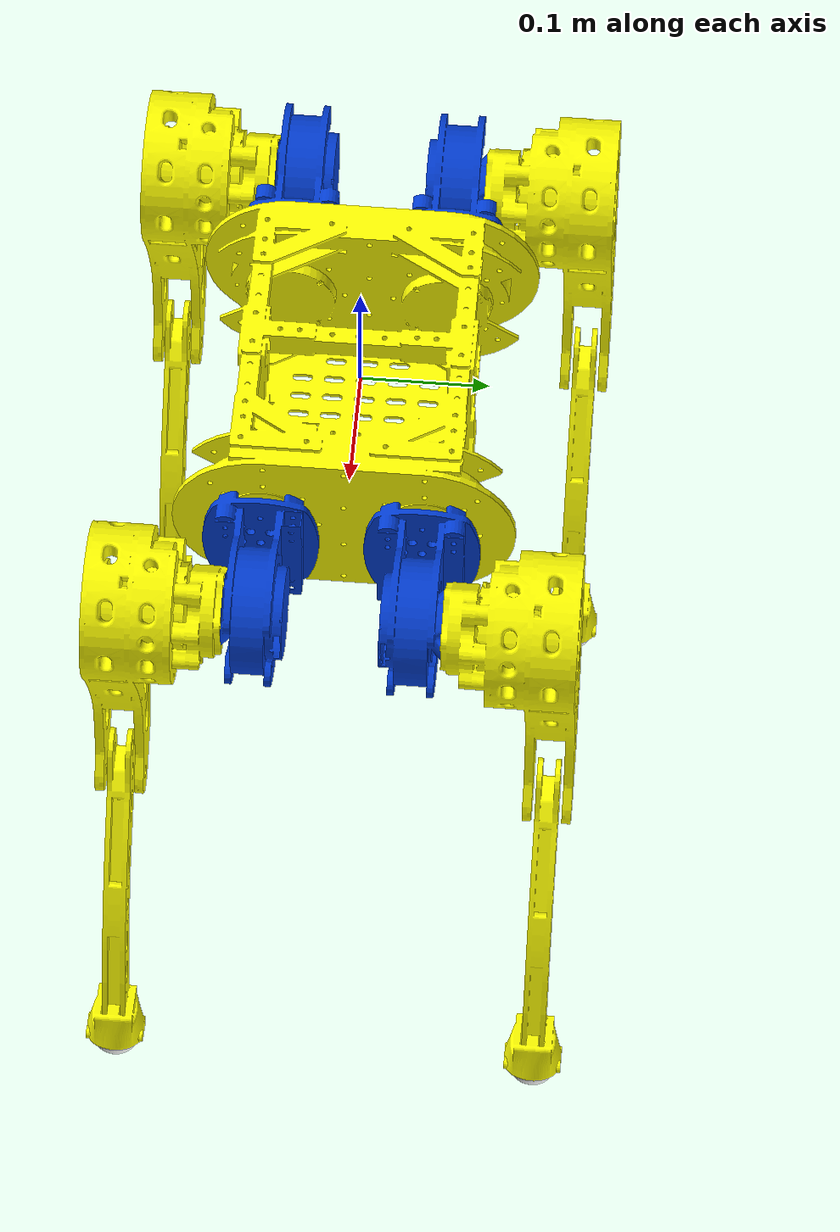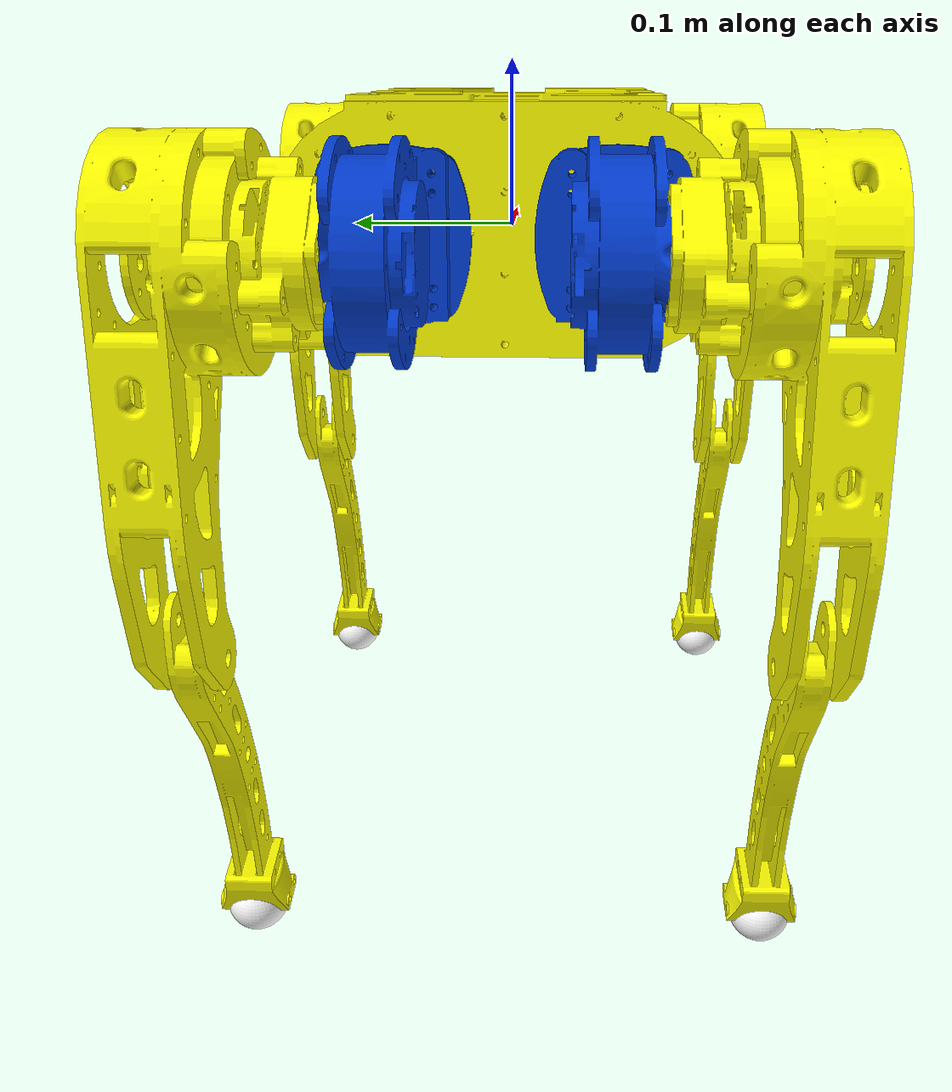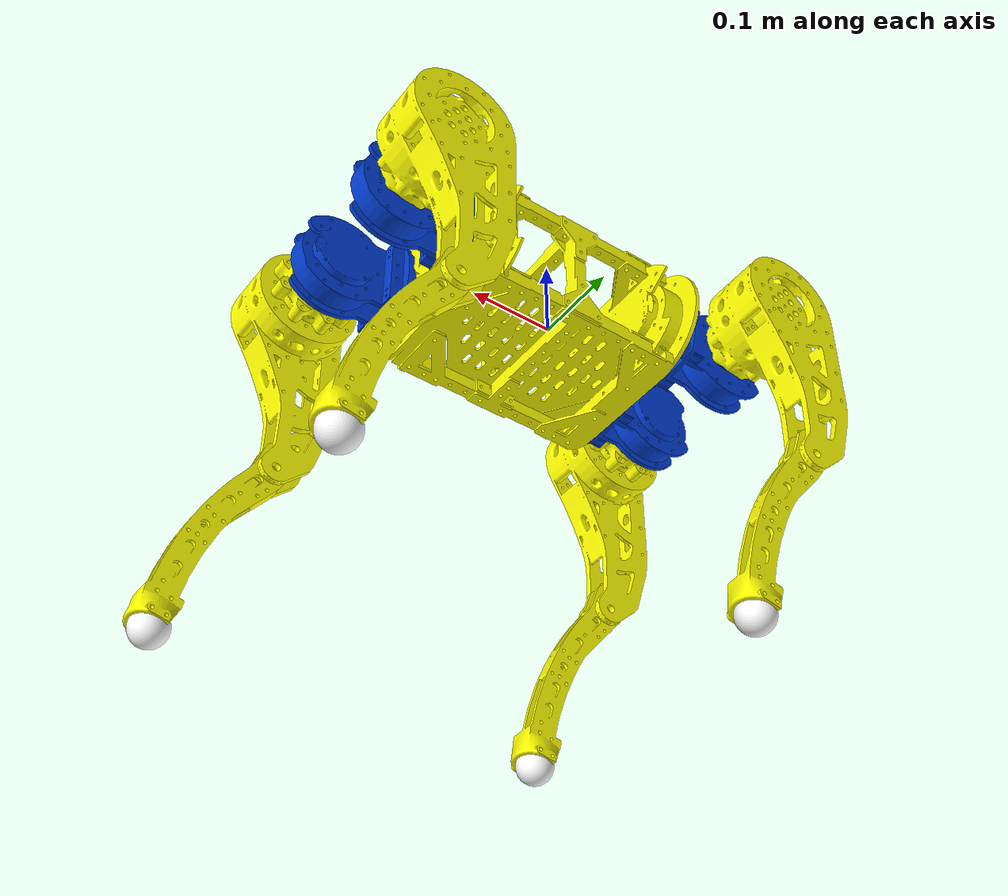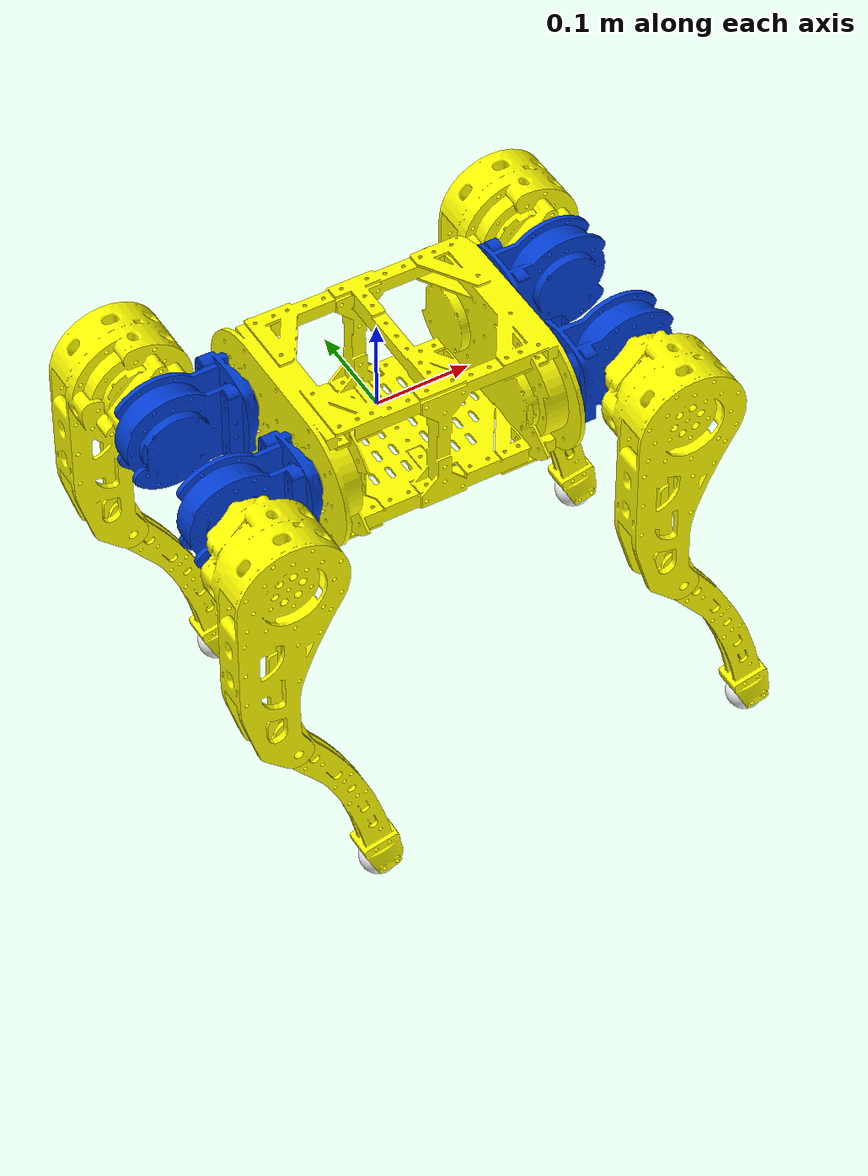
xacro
<?xml version="1.0" encoding="utf-8"?>
<robot
  name="g308_km" xmlns:xacro="http://www.ros.org/wiki/xacro">
  <link
    name="base">
    <inertial>
      <origin
        xyz="0.021402 -0.000011 0.005632"
        rpy="0 0 0" />
      <mass
        value="4.135266" />
      <inertia
        ixx="0.022287"
        ixy="0.0"
        ixz="0.0"
        iyy="0.052865"
        iyz="-0.000002"
        izz="0.063659" />
    </inertial>
    <visual>
      <origin
        xyz="0 0 0"
        rpy="0 0 0" />
      <geometry>
        <mesh
          filename="package://g308_km2/meshes/base_link.STL" />
      </geometry>
      <material
        name="">
        <color
          rgba="1 1 0 1" />
      </material>
    </visual>
    <collision>
      <origin
        xyz="0 0 0"
        rpy="0 0 0" />
      <geometry>
        <mesh
          filename="package://g308_km2/meshes/base_link.STL" />
      </geometry>
    </collision>
  </link>
  <link
    name="FL_hip">
    <inertial>
      <origin
        xyz="0.044862 0.000111 0.000121"
        rpy="0 0 0" />
      <mass
        value="1.000402" />
      <inertia
        ixx="0.000641"
        ixy="-0.000002"
        ixz="0.000002"
        iyy="0.001658"
        iyz="0.0"
        izz="0.001399" />
    </inertial>
    <visual>
      <origin
        xyz="0 0 0"
        rpy="0 0 0" />
      <geometry>
        <mesh
          filename="package://g308_km2/meshes/FL_hip.STL" />
      </geometry>
      <material
        name="">
        <color
          rgba="0.00784313725490196 0.23921568627451 0.823529411764706 1" />
      </material>
    </visual>
    <collision>
      <origin
        xyz="0 0 0"
        rpy="0 0 0" />
      <geometry>
        <mesh
          filename="package://g308_km2/meshes/FL_hip.STL" />
      </geometry>
    </collision>
  </link>
  <joint
    name="FL_hip_joint"
    type="revolute">
    <origin
      xyz="0.169896957635188 0.0614999999999988 0.00773563134770043"
      rpy="0 0 0" />
    <parent
      link="base" />
    <child
      link="FL_hip" />
    <axis
      xyz="1 0 0" />
    <limit
      lower="-0.25"
      upper="0.25"
      effort="20"
      velocity="10" />
  </joint>
  <link
    name="FL_thigh">
    <inertial>
      <origin
        xyz="-0.002626 0.041377 -0.026580"
        rpy="0 0 0" />
      <mass
        value="1.657182" />
      <inertia
        ixx="0.007409"
        ixy="0.000182"
        ixz="-0.000733"
        iyy="0.007405"
        iyz="0.001031"
        izz="0.002280" />
    </inertial>
    <visual>
      <origin
        xyz="0 0 0"
        rpy="0 0 0" />
      <geometry>
        <mesh
          filename="package://g308_km2/meshes/FL_thigh.STL" />
      </geometry>
      <material
        name="">
        <color
          rgba="1 1 0 1" />
      </material>
    </visual>
    <collision>
      <origin
        xyz="0 0 0"
        rpy="0 0 0" />
      <geometry>
        <mesh
          filename="package://g308_km2/meshes/FL_thigh.STL" />
      </geometry>
    </collision>
  </link>
  <joint
    name="FL_thigh_joint"
    type="revolute">
    <origin
      xyz="0.0677000000000165 0.0389999999999984 0"
      rpy="0 0 0" />
    <parent
      link="FL_hip" />
    <child
      link="FL_thigh" />
    <axis
      xyz="0 1 0" />
    <limit
      lower="-1.5"
      upper="1.5"
      effort="20"
      velocity="10" />
  </joint>
  <link
    name="FL_calf">
    <inertial>
      <origin
        xyz="0.0502864361062866 -0.0100012628542901 -0.0913683307386556"
        rpy="0 0 0" />
      <mass
        value="0.24357427073011" />
      <inertia
        ixx="0.001367"
        ixy="0.0"
        ixz="0.000642"
        iyy="0.001698"
        iyz="0.0"
        izz="0.000356" />
    </inertial>
    <visual>
      <origin
        xyz="0 0 0"
        rpy="0 0 0" />
      <geometry>
        <mesh
          filename="package://g308_km2/meshes/FL_calf.STL" />
      </geometry>
      <material
        name="">
        <color
          rgba="1 1 0 1" />
      </material>
    </visual>
    <collision>
      <origin
        xyz="0 0 0"
        rpy="0 0 0" />
      <geometry>
        <mesh
          filename="package://g308_km2/meshes/FL_calf.STL" />
      </geometry>
    </collision>
  </link>
  <joint
    name="FL_calf_joint"
    type="revolute">
    <origin
      xyz="0 0.0765000024826573 -0.22000000617793"
      rpy="0 0 0" />
    <parent
      link="FL_thigh" />
    <child
      link="FL_calf" />
    <axis
      xyz="0 1 0" />
    <limit
      lower="-2.3"
      upper="0"
      effort="20"
      velocity="10" />
  </joint>
  <link
    name="FL_foot">
    <inertial>
      <origin
        xyz="-0.000006 0.0 -9.21846519300606E-05"
        rpy="0 0 0" />
      <mass
        value="0.0311902243903798" />
      <inertia
        ixx="5.01347937484814E-06"
        ixy="-8.23952528788361E-13"
        ixz="-1.58989737485414E-08"
        iyy="5.06120841117782E-06"
        iyz="-1.84888830000075E-13"
        izz="4.99040323981824E-06" />
    </inertial>
    <visual>
      <origin
        xyz="0 0 0"
        rpy="0 0 0" />
      <geometry>
        <mesh
          filename="package://g308_km2/meshes/FL_foot.STL" />
      </geometry>
      <material
        name="">
        <color
          rgba="1 1 1 1" />
      </material>
    </visual>
    <collision>
      <origin
        xyz="0 0 0"
        rpy="0 0 0" />
      <geometry>
        <mesh
          filename="package://g308_km2/meshes/FL_foot.STL" />
      </geometry>
    </collision>
  </link>
  <joint
    name="FL_foot_joint"
    type="fixed">
    <origin
      xyz="0.0961788196628297 -0.00999999474772562 -0.224142335649936"
      rpy="0 0 0" />
    <parent
      link="FL_calf" />
    <child
      link="FL_foot" />
    <axis
      xyz="0 0 0" />
    <limit
      effort="20"
      velocity="10" />
  </joint>
  <link
    name="RL_hip">
    <inertial>
      <origin
        xyz="-0.044862 0.000111 0.000055"
        rpy="0 0 0" />
      <mass
        value="1.000402" />
      <inertia
        ixx="0.000641"
        ixy="0.000001"
        ixz="-0.000004"
        iyy="0.001658"
        iyz="0.0"
        izz="0.001399" />
    </inertial>
    <visual>
      <origin
        xyz="0 0 0"
        rpy="0 0 0" />
      <geometry>
        <mesh
          filename="package://g308_km2/meshes/RL_hip.STL" />
      </geometry>
      <material
        name="">
        <color
          rgba="0.00784313725490196 0.23921568627451 0.823529411764706 1" />
      </material>
    </visual>
    <collision>
      <origin
        xyz="0 0 0"
        rpy="0 0 0" />
      <geometry>
        <mesh
          filename="package://g308_km2/meshes/RL_hip.STL" />
      </geometry>
    </collision>
  </link>
  <joint
    name="RL_hip_joint"
    type="revolute">
    <origin
      xyz="-0.127094802324013 0.0615000000000004 0.00773563134769126"
      rpy="0 0 0" />
    <parent
      link="base" />
    <child
      link="RL_hip" />
    <axis
      xyz="1 0 0" />
    <limit
      lower="-0.25"
      upper="0.25"
      effort="20"
      velocity="10" />
  </joint>
  <link
    name="RL_thigh">
    <inertial>
      <origin
        xyz="-0.014268 0.021377 -0.014939"
        rpy="0 0 0" />
      <mass
        value="1.657182" />
      <inertia
        ixx="0.007409"
        ixy="0.000182"
        ixz="-0.000733"
        iyy="0.007405"
        iyz="0.001031"
        izz="0.002280" />
    </inertial>
    <visual>
      <origin
        xyz="0 0 0"
        rpy="0 0 0" />
      <geometry>
        <mesh
          filename="package://g308_km2/meshes/RL_thigh.STL" />
      </geometry>
      <material
        name="">
        <color
          rgba="1 1 0 1" />
      </material>
    </visual>
    <collision>
      <origin
        xyz="0 0 0"
        rpy="0 0 0" />
      <geometry>
        <mesh
          filename="package://g308_km2/meshes/RL_thigh.STL" />
      </geometry>
    </collision>
  </link>
  <joint
    name="RL_thigh_joint"
    type="revolute">
    <origin
      xyz="-0.0560585780326773 0.0590000000000006 -0.0116414219673209"
      rpy="0 0 0" />
    <parent
      link="RL_hip" />
    <child
      link="RL_thigh" />
    <axis
      xyz="0 1 0" />
    <limit
      lower="-1.5"
      upper="1.5"
      effort="20"
      velocity="10" />
  </joint>
  <link
    name="RL_calf">
    <inertial>
      <origin
        xyz="0.0502864229249339 -0.0100012603719431 -0.0913683369164015"
        rpy="0 0 0" />
      <mass
        value="0.243574270730111" />
      <inertia
        ixx="0.001367"
        ixy="0.0"
        ixz="-0.000642"
        iyy="0.001698"
        iyz="0.0"
        izz="0.000356" />
    </inertial>
    <visual>
      <origin
        xyz="0 0 0"
        rpy="0 0 0" />
      <geometry>
        <mesh
          filename="package://g308_km2/meshes/RL_calf.STL" />
      </geometry>
      <material
        name="">
        <color
          rgba="1 1 0 1" />
      </material>
    </visual>
    <collision>
      <origin
        xyz="0 0 0"
        rpy="0 0 0" />
      <geometry>
        <mesh
          filename="package://g308_km2/meshes/RL_calf.STL" />
      </geometry>
    </collision>
  </link>
  <joint
    name="RL_calf_joint"
    type="revolute">
    <origin
      xyz="-0.0116414219673151 0.0565000000000057 -0.208358578032676"
      rpy="0 0 0" />
    <parent
      link="RL_thigh" />
    <child
      link="RL_calf" />
    <axis
      xyz="0 1 0" />
    <limit
      lower="-2.3"
      upper="0"
      effort="20"
      velocity="10" />
  </joint>
  <link
    name="RL_foot">
    <inertial>
      <origin
        xyz="-5.85322688909096E-06 2.61542565382911E-10 -9.2190868305364E-05"
        rpy="0 0 0" />
      <mass
        value="0.0311902243903798" />
      <inertia
        ixx="5.01347937484815E-06"
        ixy="-8.23952529291106E-13"
        ixz="-1.58989737485399E-08"
        iyy="5.06120841117782E-06"
        iyz="-1.8488882759212E-13"
        izz="4.99040323981824E-06" />
    </inertial>
    <visual>
      <origin
        xyz="0 0 0"
        rpy="0 0 0" />
      <geometry>
        <mesh
          filename="package://g308_km2/meshes/RL_foot.STL" />
      </geometry>
      <material
        name="">
        <color
          rgba="1 1 1 1" />
      </material>
    </visual>
    <collision>
      <origin
        xyz="0 0 0"
        rpy="0 0 0" />
      <geometry>
        <mesh
          filename="package://g308_km2/meshes/RL_foot.STL" />
      </geometry>
    </collision>
  </link>
  <joint
    name="RL_foot_joint"
    type="fixed">
    <origin
      xyz="0.0961788196898257 -0.00999999468162976 -0.224142335611317"
      rpy="0 0 0" />
    <parent
      link="RL_calf" />
    <child
      link="RL_foot" />
    <axis
      xyz="0 0 0" />
  </joint>
  <link
    name="FR_hip">
    <inertial>
      <origin
        xyz="0.044862 -0.000111 0.000055"
        rpy="0 0 0" />
      <mass
        value="1.000402" />
      <inertia
        ixx="0.000641"
        ixy="0.000001"
        ixz="0.000004"
        iyy="0.001658"
        iyz="0.0"
        izz="0.001399" />
    </inertial>
    <visual>
      <origin
        xyz="0 0 0"
        rpy="0 0 0" />
      <geometry>
        <mesh
          filename="package://g308_km2/meshes/FR_hip.STL" />
      </geometry>
      <material
        name="">
        <color
          rgba="0.00784313725490196 0.23921568627451 0.823529411764706 1" />
      </material>
    </visual>
    <collision>
      <origin
        xyz="0 0 0"
        rpy="0 0 0" />
      <geometry>
        <mesh
          filename="package://g308_km2/meshes/FR_hip.STL" />
      </geometry>
    </collision>
  </link>
  <joint
    name="FR_hip_joint"
    type="revolute">
    <origin
      xyz="0.169896957585034 -0.0615000000501541 0.00773564344453465"
      rpy="0 0 0" />
    <parent
      link="base" />
    <child
      link="FR_hip" />
    <axis
      xyz="1 0 0" />
    <limit
      lower="-0.25"
      upper="0.25"
      effort="20"
      velocity="10" />
  </joint>
  <link
    name="FR_thigh">
    <inertial>
      <origin
        xyz="-0.014239 0.021377 -0.014910"
        rpy="0 0 0" />
      <mass
        value="1.657182" />
      <inertia
        ixx="0.007412"
        ixy="-0.000183"
        ixz="-0.000734"
        iyy="0.007408"
        iyz="-0.001032"
        izz="0.002281" />
    </inertial>
    <visual>
      <origin
        xyz="0 0 0"
        rpy="0 0 0" />
      <geometry>
        <mesh
          filename="package://g308_km2/meshes/FR_thigh.STL" />
      </geometry>
      <material
        name="">
        <color
          rgba="1 1 0 1" />
      </material>
    </visual>
    <collision>
      <origin
        xyz="0 0 0"
        rpy="0 0 0" />
      <geometry>
        <mesh
          filename="package://g308_km2/meshes/FR_thigh.STL" />
      </geometry>
    </collision>
  </link>
  <joint
    name="FR_thigh_joint"
    type="revolute">
    <origin
      xyz="0.0793414219628311 -0.0590000000044883 -0.0116414499397221"
      rpy="0 0 0" />
    <parent
      link="FR_hip" />
    <child
      link="FR_thigh" />
    <axis
      xyz="0 1 0" />
    <limit
      lower="-1.5"
      upper="1.5"
      effort="20"
      velocity="10" />
  </joint>
  <link
    name="FR_calf">
    <inertial>
      <origin
        xyz="0.0502864229249339 -0.0100012603719431 -0.0913683369164015"
        rpy="0 0 0" />
      <mass
        value="0.243574270730111" />
      <inertia
        ixx="0.001367"
        ixy="0.0"
        ixz="0.000642"
        iyy="0.001698"
        iyz="0.0"
        izz="0.000356" />
    </inertial>
    <visual>
      <origin
        xyz="0 0 0"
        rpy="0 0 0" />
      <geometry>
        <mesh
          filename="package://g308_km2/meshes/FR_calf.STL" />
      </geometry>
      <material
        name="">
        <color
          rgba="1 1 0 1" />
      </material>
    </visual>
    <collision>
      <origin
        xyz="0 0 0"
        rpy="0 0 0" />
      <geometry>
        <mesh
          filename="package://g308_km2/meshes/FR_calf.STL" />
      </geometry>
    </collision>
  </link>
  <joint
    name="FR_calf_joint"
    type="revolute">
    <origin
      xyz="-0.0116414038818166 -0.0365000120545385 -0.208358576391672"
      rpy="0 0 0" />
    <parent
      link="FR_thigh" />
    <child
      link="FR_calf" />
    <axis
      xyz="0 1 0" />
    <limit
      lower="-2.3"
      upper="0"
      effort="20"
      velocity="10" />
  </joint>
  <link
    name="FR_foot">
    <inertial>
      <origin
        xyz="-5.85322568097402E-06 2.64939459260205E-10 -9.21908797132942E-05"
        rpy="0 0 0" />
      <mass
        value="0.0311902243903797" />
      <inertia
        ixx="5.01347937484811E-06"
        ixy="-8.23952528235531E-13"
        ixz="-1.58989737485516E-08"
        iyy="5.06120841117781E-06"
        iyz="-1.84888823216108E-13"
        izz="4.99040323981825E-06" />
    </inertial>
    <visual>
      <origin
        xyz="0 0 0"
        rpy="0 0 0" />
      <geometry>
        <mesh
          filename="package://g308_km2/meshes/FR_foot.STL" />
      </geometry>
      <material
        name="">
        <color
          rgba="1 1 1 1" />
      </material>
    </visual>
    <collision>
      <origin
        xyz="0 0 0"
        rpy="0 0 0" />
      <geometry>
        <mesh
          filename="package://g308_km2/meshes/FR_foot.STL" />
      </geometry>
    </collision>
  </link>
  <joint
    name="FR_foot_joint"
    type="fixed" dont_collapse="true">
    <origin
      xyz="0.096178801658822 -0.00999998257200752 -0.224142321376693"
      rpy="0 0 0" />
    <parent
      link="FR_calf" />
    <child
      link="FR_foot" />
    <axis
      xyz="0 0 0" />
  </joint>
  <link
    name="RR_hip">
    <inertial>
      <origin
        xyz="-0.044862 -0.000111 0.000121"
        rpy="0 0 0" />
      <mass
        value="1.000402" />
      <inertia
        ixx="0.000641"
        ixy="-0.000002"
        ixz="-0.000002"
        iyy="0.001658"
        iyz="0.0"
        izz="0.001399" />
    </inertial>
    <visual>
      <origin
        xyz="0 0 0"
        rpy="0 0 0" />
      <geometry>
        <mesh
          filename="package://g308_km2/meshes/RR_hip.STL" />
      </geometry>
      <material
        name="">
        <color
          rgba="0.00784313725490196 0.23921568627451 0.823529411764706 1" />
      </material>
    </visual>
    <collision>
      <origin
        xyz="0 0 0"
        rpy="0 0 0" />
      <geometry>
        <mesh
          filename="package://g308_km2/meshes/RR_hip.STL" />
      </geometry>
    </collision>
  </link>
  <joint
    name="RR_hip_joint"
    type="revolute">
    <origin
      xyz="-0.127094802324014 -0.0614999999999988 0.00773563134771131"
      rpy="0 0 0" />
    <parent
      link="base" />
    <child
      link="RR_hip" />
    <axis
      xyz="1 0 0" />
    <limit
      lower="-0.25"
      upper="0.25"
      effort="20"
      velocity="10" />
  </joint>
  <link
    name="RR_thigh">
    <inertial>
      <origin
        xyz="-0.014239 -0.021377 -0.014910"
        rpy="0 0 0" />
      <mass
        value="1.657182" />
      <inertia
        ixx="0.007412"
        ixy="-0.000183"
        ixz="-0.000734"
        iyy="0.007408"
        iyz="-0.001032"
        izz="0.002281" />
    </inertial>
    <visual>
      <origin
        xyz="0 0 0"
        rpy="0 0 0" />
      <geometry>
        <mesh
          filename="package://g308_km2/meshes/RR_thigh.STL" />
      </geometry>
      <material
        name="">
        <color
          rgba="1 1 0 1" />
      </material>
    </visual>
    <collision>
      <origin
        xyz="0 0 0"
        rpy="0 0 0" />
      <geometry>
        <mesh
          filename="package://g308_km2/meshes/RR_thigh.STL" />
      </geometry>
    </collision>
  </link>
  <joint
    name="RR_thigh_joint"
    type="revolute">
    <origin
      xyz="-0.0560585780326786 -0.0589999999999984 -0.0116414219673416"
      rpy="0 0 0" />
    <parent
      link="RR_hip" />
    <child
      link="RR_thigh" />
    <axis
      xyz="0 1 0" />
    <limit
      lower="-1.5"
      upper="1.5"
      effort="20"
      velocity="10" />
  </joint>
  <link
    name="RR_calf">
    <inertial>
      <origin
        xyz="0.0502864229249339 -0.0100012603719431 -0.0913683369164015"
        rpy="0 0 0" />
      <mass
        value="0.243574270730111" />
      <inertia
        ixx="0.001367"
        ixy="0.0"
        ixz="0.000642"
        iyy="0.001698"
        iyz="0.0"
        izz="0.000356" />
    </inertial>
    <visual>
      <origin
        xyz="0 0 0"
        rpy="0 0 0" />
      <geometry>
        <mesh
          filename="package://g308_km2/meshes/RR_calf.STL" />
      </geometry>
      <material
        name="">
        <color
          rgba="1 1 0 1" />
      </material>
    </visual>
    <collision>
      <origin
        xyz="0 0 0"
        rpy="0 0 0" />
      <geometry>
        <mesh
          filename="package://g308_km2/meshes/RR_calf.STL" />
      </geometry>
    </collision>
  </link>
  <joint
    name="RR_calf_joint"
    type="revolute">
    <origin
      xyz="-0.0116414073695187 -0.0365000163770425 -0.208358573653802"
      rpy="0 0 0" />
    <parent
      link="RR_thigh" />
    <child
      link="RR_calf" />
    <axis
      xyz="0 1 0" />
    <limit
      lower="-2.3"
      upper="0"
      effort="20"
      velocity="10" />
  </joint>
  <link
    name="RR_foot">
    <inertial>
      <origin
        xyz="-5.85322945402533E-06 2.69323785495601E-10 -9.21908810186389E-05"
        rpy="0 0 0" />
      <mass
        value="0.0311902243903798" />
      <inertia
        ixx="5.01347937484812E-06"
        ixy="-8.2395252888934E-13"
        ixz="-1.58989737485532E-08"
        iyy="5.06120841117781E-06"
        iyz="-1.84888826512745E-13"
        izz="4.99040323981825E-06" />
    </inertial>
    <visual>
      <origin
        xyz="0 0 0"
        rpy="0 0 0" />
      <geometry>
        <mesh
          filename="package://g308_km2/meshes/RR_foot.STL" />
      </geometry>
      <material
        name="">
        <color
          rgba="1 1 1 1" />
      </material>
    </visual>
    <collision>
      <origin
        xyz="0 0 0"
        rpy="0 0 0" />
      <geometry>
        <mesh
          filename="package://g308_km2/meshes/RR_foot.STL" />
      </geometry>
    </collision>
  </link>
  <joint
    name="RR_foot_joint"
    type="fixed">
    <origin
      xyz="0.0961788050922009 -0.0099999783045851 -0.224142339990188"
      rpy="0 0 0" />
    <parent
      link="RR_calf" />
    <child
      link="RR_foot" />
    <axis
      xyz="0 0 0" />
  </joint>
    <transmission name="t11">
    <type>transmission_interface/SimpleTransmission</type>
    <joint name="FL_hip_joint">
      <hardwareInterface>hardware_interface/EffortJointInterface</hardwareInterface>
    </joint>
    <actuator name="a11">
      <mechanicalReduction>1.0</mechanicalReduction>
      <hardwareInterface>hardware_interface/EffortJointInterface</hardwareInterface>
    </actuator>
  </transmission>
   <transmission name="t12">
    <type>transmission_interface/SimpleTransmission</type>
    <joint name="FL_thigh_joint">
      <hardwareInterface>hardware_interface/EffortJointInterface</hardwareInterface>
    </joint>
    <actuator name="a12">
      <mechanicalReduction>1.0</mechanicalReduction>
      <hardwareInterface>hardware_interface/EffortJointInterface</hardwareInterface>
    </actuator>
  </transmission>
   <transmission name="t13">
    <type>transmission_interface/SimpleTransmission</type>
    <joint name="FL_calf_joint">
      <hardwareInterface>hardware_interface/EffortJointInterface</hardwareInterface>
    </joint>
    <actuator name="a13">
      <mechanicalReduction>1.0</mechanicalReduction>
      <hardwareInterface>hardware_interface/EffortJointInterface</hardwareInterface>
    </actuator>
  </transmission>
  <transmission name="t21">
    <type>transmission_interface/SimpleTransmission</type>
    <joint name="RL_hip_joint">
      <hardwareInterface>hardware_interface/EffortJointInterface</hardwareInterface>
    </joint>
    <actuator name="a21">
      <mechanicalReduction>1.0</mechanicalReduction>
      <hardwareInterface>hardware_interface/EffortJointInterface</hardwareInterface>
    </actuator>
  </transmission>
   <transmission name="t22">
    <type>transmission_interface/SimpleTransmission</type>
    <joint name="RL_thigh_joint">
      <hardwareInterface>hardware_interface/EffortJointInterface</hardwareInterface>
    </joint>
    <actuator name="a21">
      <mechanicalReduction>1.0</mechanicalReduction>
      <hardwareInterface>hardware_interface/EffortJointInterface</hardwareInterface>
    </actuator>
  </transmission>
   <transmission name="t23">
    <type>transmission_interface/SimpleTransmission</type>
    <joint name="RL_calf_joint">
      <hardwareInterface>hardware_interface/EffortJointInterface</hardwareInterface>
    </joint>
    <actuator name="a23">
      <mechanicalReduction>1.0</mechanicalReduction>
      <hardwareInterface>hardware_interface/EffortJointInterface</hardwareInterface>
    </actuator>
  </transmission>
   <transmission name="t31">
    <type>transmission_interface/SimpleTransmission</type>
    <joint name="FR_hip_joint">
      <hardwareInterface>hardware_interface/EffortJointInterface</hardwareInterface>
    </joint>
    <actuator name="a31">
      <mechanicalReduction>1.0</mechanicalReduction>
      <hardwareInterface>hardware_interface/EffortJointInterface</hardwareInterface>
    </actuator>
  </transmission>
   <transmission name="t32">
    <type>transmission_interface/SimpleTransmission</type>
    <joint name="FR_thigh_joint">
      <hardwareInterface>hardware_interface/EffortJointInterface</hardwareInterface>
    </joint>
    <actuator name="a32">
      <mechanicalReduction>1.0</mechanicalReduction>
      <hardwareInterface>hardware_interface/EffortJointInterface</hardwareInterface>
    </actuator>
  </transmission>
   <transmission name="t32">
    <type>transmission_interface/SimpleTransmission</type>
    <joint name="FR_calf_joint">
      <hardwareInterface>hardware_interface/EffortJointInterface</hardwareInterface>
    </joint>
    <actuator name="a32">
      <mechanicalReduction>1.0</mechanicalReduction>
      <hardwareInterface>hardware_interface/EffortJointInterface</hardwareInterface>
    </actuator>
  </transmission>
   <transmission name="t41">
    <type>transmission_interface/SimpleTransmission</type>
    <joint name="RR_hip_joint">
      <hardwareInterface>hardware_interface/EffortJointInterface</hardwareInterface>
    </joint>
    <actuator name="a41">
      <mechanicalReduction>1.0</mechanicalReduction>
      <hardwareInterface>hardware_interface/EffortJointInterface</hardwareInterface>
    </actuator>
  </transmission>
   <transmission name="t42">
    <type>transmission_interface/SimpleTransmission</type>
    <joint name="RR_thigh_joint">
      <hardwareInterface>hardware_interface/EffortJointInterface</hardwareInterface>
    </joint>
    <actuator name="a42">
      <mechanicalReduction>1.0</mechanicalReduction>
      <hardwareInterface>hardware_interface/EffortJointInterface</hardwareInterface>
    </actuator>
  </transmission>
   <transmission name="t43">
    <type>transmission_interface/SimpleTransmission</type>
    <joint name="RR_calf_joint">
      <hardwareInterface>hardware_interface/EffortJointInterface</hardwareInterface>
    </joint>
    <actuator name="a43">
      <mechanicalReduction>1.0</mechanicalReduction>
      <hardwareInterface>hardware_interface/EffortJointInterface</hardwareInterface>
    </actuator>
  </transmission>
  <gazebo>
    <plugin name="gazebo_ros_control" filename="libgazebo_ros_control.so">
      <robotNamespace>/horse</robotNamespace>
      <robotSimType>gazebo_ros_control/DefaultRobotHWSim</robotSimType>
      <legacyModeNS>true</legacyModeNS>
    </plugin>
  </gazebo>

  <gazebo reference="base">
      <turnGravityOff>false</turnGravityOff>
  </gazebo>

  <gazebo reference="imu_link">
      <mu1>0.2</mu1>
      <mu2>0.2</mu2>
  </gazebo>

  <!-- FL leg -->
  <gazebo reference="FL_hip">
      <mu1>0.2</mu1>
      <mu2>0.2</mu2>

  </gazebo>
  <gazebo reference="FL_thigh">
      <mu1>0.2</mu1>
      <mu2>0.2</mu2>
      <self_collide>1</self_collide>
      <kp  value="1000000.0"/>
      <kd  value="1.0"/>
  </gazebo>
  <gazebo reference="FL_calf">
      <mu1>0.2</mu1>
      <mu2>0.2</mu2>
      <self_collide>1</self_collide>
  </gazebo>
  <gazebo reference="FL_foot">
      <mu1>0.6</mu1>
      <mu2>0.6</mu2>
      <self_collide>1</self_collide>
      <kp  value="1000000.0"/>
      <kd  value="1.0"/>
  </gazebo>

  <!-- FR leg -->
  <gazebo reference="FR_hip">
      <mu1>0.2</mu1>
      <mu2>0.2</mu2>
  </gazebo>
  <gazebo reference="FR_thigh">
      <mu1>0.2</mu1>
      <mu2>0.2</mu2>
      <self_collide>1</self_collide>
      <kp  value="1000000.0"/>
      <kd  value="1.0"/>
  </gazebo>
  <gazebo reference="FR_calf">
      <mu1>0.2</mu1>
      <mu2>0.2</mu2>
      <self_collide>1</self_collide>
  </gazebo>
  <gazebo reference="FR_foot">
      <mu1>0.6</mu1>
      <mu2>0.6</mu2>
      <self_collide>1</self_collide>
      <kp  value="1000000.0"/>
      <kd  value="1.0"/>
  </gazebo>

  <!-- RL leg -->
  <gazebo reference="RL_hip">
      <mu1>0.2</mu1>
      <mu2>0.2</mu2>
  </gazebo>
  <gazebo reference="RL_thigh">
      <mu1>0.2</mu1>
      <mu2>0.2</mu2>
      <self_collide>1</self_collide>
      <kp  value="1000000.0"/>
      <kd  value="1.0"/>
  </gazebo>
  <gazebo reference="RL_calf">
      <mu1>0.2</mu1>
      <mu2>0.2</mu2>
      <self_collide>1</self_collide>
  </gazebo>
  <gazebo reference="RL_foot">
      <mu1>0.6</mu1>
      <mu2>0.6</mu2>
      <self_collide>1</self_collide>
      <kp  value="1000000.0"/>
      <kd  value="1.0"/>
  </gazebo>

  <!-- RR leg -->
  <gazebo reference="RR_hip">
      <mu1>0.2</mu1>
      <mu2>0.2</mu2>
  </gazebo>
  <gazebo reference="RR_thigh">
      <mu1>0.2</mu1>
      <mu2>0.2</mu2>
      <self_collide>1</self_collide>
      <kp  value="1000000.0"/>
      <kd  value="1.0"/>
  </gazebo>
  <gazebo reference="RR_calf">
      <mu1>0.2</mu1>
      <mu2>0.2</mu2>
      <self_collide>1</self_collide>
  </gazebo>
  <gazebo reference="RR_foot">
      <mu1>0.6</mu1>
      <mu2>0.6</mu2>
      <self_collide>1</self_collide>
      <kp  value="1000000.0"/>
      <kd  value="1.0"/>
  </gazebo>
  <gazebo>
      <plugin name="3dplot" filename="libLinkPlot3DPlugin.so">
          <frequency>10</frequency>
          <plot>
              <link>base</link>
              <pose>0 0 0 0 0 0</pose>
              <material>Gazebo/Yellow</material>
          </plot>
      </plugin>
  </gazebo>

      <joint name="imu_joint" type="fixed">
        <parent link="base"/>
        <child link="imu_link"/>
        <origin rpy="0 0 0" xyz="0 0 0"/>
    </joint>

    <link name="imu_link">
        <inertial>
            <mass value="0.001"/>
            <origin rpy="0 0 0" xyz="0 0 0"/>
            <inertia ixx="0.0001" ixy="0" ixz="0" iyy="0.0001" iyz="0" izz="0.0001"/>
        </inertial>
        <visual>
            <origin rpy="0 0 0" xyz="0 0 0"/>
            <geometry>
                <box size="0.001 0.001 0.001"/>
            </geometry>
            <material name="red"/>
        </visual>
        <collision>
            <origin rpy="0 0 0" xyz="0 0 0"/>
            <geometry>
                <box size=".001 .001 .001"/>
            </geometry>
        </collision>
    </link>

        <gazebo reference="imu_link">
        <gravity>true</gravity>
        <sensor name="imu_sensor" type="imu">
            <always_on>true</always_on>
            <update_rate>1000</update_rate>
            <visualize>true</visualize>
            <topic>__default_topic__</topic>
            <plugin filename="libgazebo_ros_imu_sensor.so" name="imu_plugin">
                <topicName>base_imu</topicName>
                <bodyName>imu_link</bodyName>
                <updateRateHZ>1000.0</updateRateHZ>
                <gaussianNoise>0.0</gaussianNoise>
                <xyzOffset>0 0 0</xyzOffset>
                <rpyOffset>0 0 0</rpyOffset>
                <frameName>imu_link</frameName>
            </plugin>
            <pose>0 0 0 0 0 0</pose>
        </sensor>
    </gazebo>

   <gazebo
      reference="RR_foot_joint">
     <provideFeedback>true</provideFeedback>
     <disableFixedJointLumping>false</disableFixedJointLumping>
   </gazebo>

  <gazebo
      reference="RL_foot_joint">
     <provideFeedback>true</provideFeedback>
     <disableFixedJointLumping>false</disableFixedJointLumping>
  </gazebo>

     <gazebo
      reference="FL_foot_joint">
     <provideFeedback>true</provideFeedback>
     <disableFixedJointLumping>false</disableFixedJointLumping>
   </gazebo>

     <gazebo
      reference="FR_foot_joint">
     <provideFeedback>true</provideFeedback>
     <disableFixedJointLumping>false</disableFixedJointLumping>
   </gazebo>
    <gazebo reference="FR_calf">
      <sensor name="FR_foot" type="contact">
      <update_rate>100</update_rate>
      <plugin name="contactPlugin" filename="libunitreeFootContactPlugin.so"/>
        <frame_id>FR_foot</frame_id>
      <contact>
          <collision>FR_calf_fixed_joint_lump__FR_foot_collision_1</collision>
      </contact>
      </sensor>
    </gazebo>

    <gazebo reference="FR_foot">
        <visual>
            <plugin name="drawForcePlugin" filename="libunitreeDrawForcePlugin.so">
                <topicName>FR_foot_contact</topicName>
            </plugin>
        </visual>
    </gazebo>

    <gazebo reference="FL_calf">
      <sensor name="FL_foot" type="contact">
      <update_rate>100</update_rate>
      <plugin name="contactPlugin" filename="libunitreeFootContactPlugin.so"/>
        <frame_id>FL_foot</frame_id>
      <contact>
          <collision>FL_calf_fixed_joint_lump__FL_foot_collision_1</collision>
      </contact>
      </sensor>
    </gazebo>

    <gazebo reference="FL_foot">
        <visual>
            <plugin name="drawForcePlugin" filename="libunitreeDrawForcePlugin.so">
                <topicName>FL_foot_contact</topicName>
            </plugin>
        </visual>
    </gazebo>

    <gazebo reference="RL_calf">
      <sensor name="RL_foot" type="contact">
      <update_rate>100</update_rate>
      <plugin name="contactPlugin" filename="libunitreeFootContactPlugin.so"/>
        <frame_id>RL_foot</frame_id>
      <contact>
          <collision>RL_calf_fixed_joint_lump__RL_foot_collision_1</collision>
      </contact>
      </sensor>
    </gazebo>

    <gazebo reference="RL_foot">
        <visual>
            <plugin name="drawForcePlugin" filename="libunitreeDrawForcePlugin.so">
                <topicName>RL_foot_contact</topicName>
            </plugin>
        </visual>
    </gazebo>

    <gazebo reference="RR_calf">
      <sensor name="RR_foot" type="contact">
      <update_rate>100</update_rate>
      <plugin name="contactPlugin" filename="libunitreeFootContactPlugin.so"/>
        <frame_id>RR_foot</frame_id>
      <contact>
          <collision>RR_calf_fixed_joint_lump__RR_foot_collision_1</collision>
      </contact>
      </sensor>
    </gazebo>

    <gazebo reference="RR_foot">
        <visual>
            <plugin name="drawForcePlugin" filename="libunitreeDrawForcePlugin.so">
                <topicName>RR_foot_contact</topicName>
            </plugin>
        </visual>
    </gazebo>

</robot>
